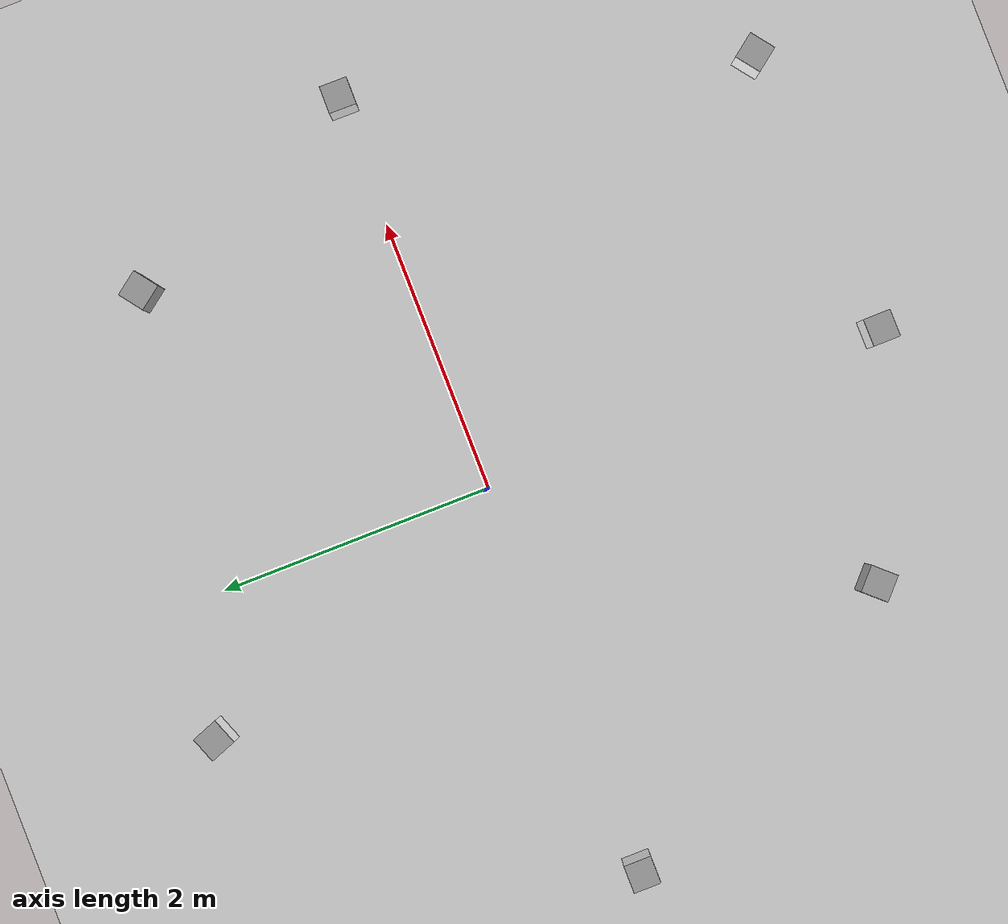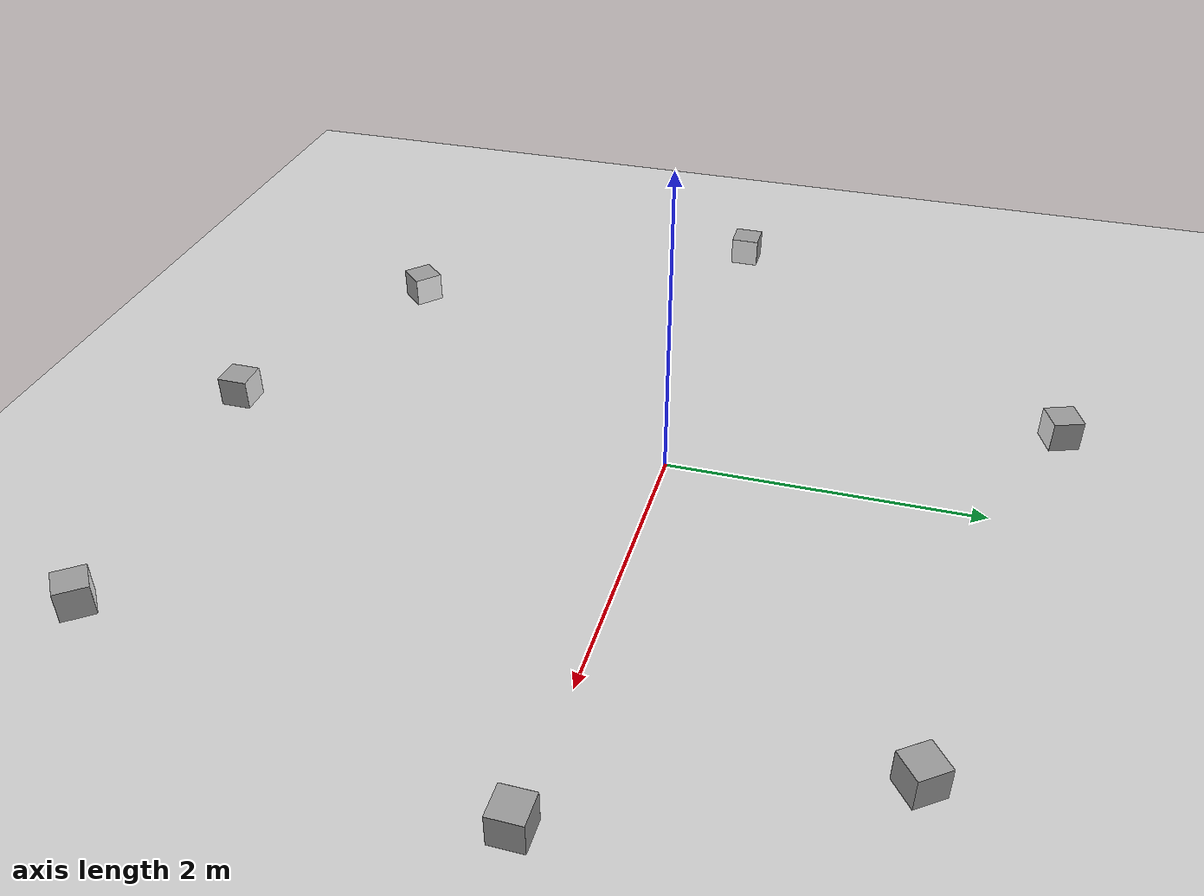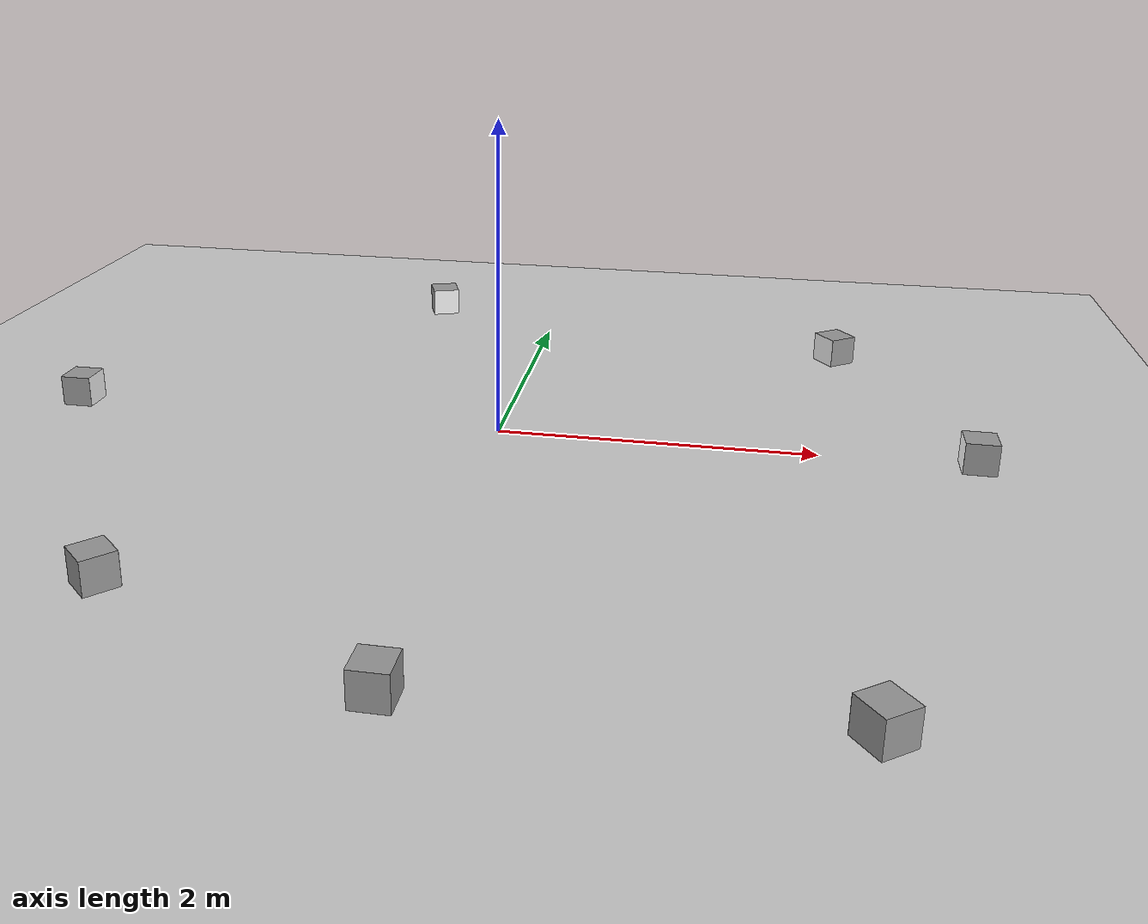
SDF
<sdf version="1.7">
 <world name="default">
  <light name="sun" type="directional">
   <pose>0 0 10 0 -0 0</pose>
   <diffuse>0.8 0.8 0.8 1</diffuse>
   <specular>0.2 0.2 0.2 1</specular>
   <attenuation>
    <range>1000</range>
    <constant>0.9</constant>
    <linear>0.01</linear>
    <quadratic>0.001</quadratic>
   </attenuation>
   <direction>-0.5 0.1 -0.9</direction>
   <spot><inner_angle>0</inner_angle><outer_angle>0</outer_angle><falloff>0</falloff></spot>
  </light>
  <model name="ground_plane">
   <static>1</static>
   <link name="link">
    <collision name="collision">
     <geometry><plane><normal>0 0 1</normal><size>100 100</size></plane></geometry>
     <surface>
      <contact><collide_bitmask>65535</collide_bitmask></contact>
      <friction><ode><mu>100</mu><mu2>50</mu2></ode></friction>
     </surface>
    </collision>
    <visual name="visual">
     <cast_shadows>0</cast_shadows>
     <geometry><plane><normal>0 0 1</normal><size>100 100</size></plane></geometry>
     <material>
      <script><uri>file://media/materials/scripts/gazebo.material</uri><name>Gazebo/Grey</name></script>
     </material>
    </visual>
   </link>
  </model>
  <gravity>0 0 -9.8</gravity>
  <magnetic_field>6e-06 2.3e-05 -4.2e-05</magnetic_field>
  <atmosphere type="adiabatic"/>
  <physics type="ode">
   <max_step_size>0.001</max_step_size>
   <real_time_factor>1</real_time_factor>
   <real_time_update_rate>1000</real_time_update_rate>
  </physics>
  <scene><ambient>0.4 0.4 0.4 1</ambient><background>0.7 0.7 0.7 1</background><shadows>1</shadows></scene>
  <spherical_coordinates>
   <surface_model>EARTH_WGS84</surface_model>
   <latitude_deg>0</latitude_deg>
   <longitude_deg>0</longitude_deg>
   <elevation>0</elevation>
   <heading_deg>0</heading_deg>
  </spherical_coordinates>
  <model name="marker13_box">
   <link name="marker">
    <inertial>
     <mass>0.1</mass>
     <inertia><ixx>0</ixx><ixy>0</ixy><ixz>0</ixz><iyy>0</iyy><iyz>0</iyz><izz>0</izz></inertia>
    </inertial>
    <self_collide>1</self_collide>
    <pose>-0.76428 -0.101106 0.120004 -0.015494 1.56996 -0.015507</pose>
    <visual name="visual">
     <geometry><box><size>0.2 0.2 0.001</size></box></geometry>
     <material>
      <script>
       <uri>model://marker13/material/scripts</uri>
       <uri>model://marker13/material/textures</uri>
       <name>Aruco/marker13</name>
      </script>
      <shader type="pixel"><normal_map>__default__</normal_map></shader>
      <emissive>0 0 0 1</emissive>
      <ambient>1 1 1 1</ambient>
      <diffuse>1 1 1 1</diffuse>
      <specular>0 0 0 1</specular>
     </material>
    </visual>
    <collision name="collision">
     <geometry><box><size>0.2 0.2 0.02</size></box></geometry>
     <surface>
      <friction>
       <ode><mu>1</mu><mu2>1</mu2><fdir1>0 0 0</fdir1><slip1>0</slip1><slip2>0</slip2></ode>
       <torsional>
        <coefficient>1</coefficient>
        <patch_radius>0</patch_radius>
        <surface_radius>0</surface_radius>
        <use_patch_radius>1</use_patch_radius>
        <ode><slip>0</slip></ode>
       </torsional>
      </friction>
      <bounce><restitution_coefficient>0</restitution_coefficient><threshold>1e+06</threshold></bounce>
      <contact>
       <collide_without_contact>0</collide_without_contact>
       <collide_without_contact_bitmask>1</collide_without_contact_bitmask>
       <collide_bitmask>1</collide_bitmask>
       <ode>
        <soft_cfm>0</soft_cfm>
        <soft_erp>0.2</soft_erp>
        <kp>1e+13</kp>
        <kd>1</kd>
        <max_vel>0.01</max_vel>
        <min_depth>0</min_depth>
       </ode>
       <bullet>
        <split_impulse>1</split_impulse>
        <split_impulse_penetration_threshold>-0.01</split_impulse_penetration_threshold>
        <soft_cfm>0</soft_cfm>
        <soft_erp>0.2</soft_erp>
        <kp>1e+13</kp>
        <kd>1</kd>
       </bullet>
      </contact>
     </surface>
    </collision>
   </link>
   <link name="link_1">
    <inertial>
     <mass>1</mass>
     <inertia>
      <ixx>0.166667</ixx>
      <ixy>0</ixy>
      <ixz>0</ixz>
      <iyy>0.166667</iyy>
      <iyz>0</iyz>
      <izz>0.166667</izz>
     </inertia>
    </inertial>
    <pose>-0.86428 -0.101106 0.12 -1.3e-05 -4.2e-05 0</pose>
    <visual name="visual">
     <geometry><box><size>0.2 0.2 0.2</size></box></geometry>
     <material>
      <lighting>1</lighting>
      <script><uri>file://media/materials/scripts/gazebo.material</uri><name>Gazebo/Grey</name></script>
      <shader type="pixel"><normal_map>__default__</normal_map></shader>
      <emissive>0 0 0 1</emissive>
      <ambient>0.3 0.3 0.3 1</ambient>
      <diffuse>0.7 0.7 0.7 1</diffuse>
      <specular>0.01 0.01 0.01 1</specular>
     </material>
    </visual>
    <collision name="collision">
     <geometry><box><size>0.2 0.2 0.2</size></box></geometry>
     <surface>
      <friction>
       <ode><mu>1</mu><mu2>1</mu2><fdir1>0 0 0</fdir1><slip1>0</slip1><slip2>0</slip2></ode>
       <torsional>
        <coefficient>1</coefficient>
        <patch_radius>0</patch_radius>
        <surface_radius>0</surface_radius>
        <use_patch_radius>1</use_patch_radius>
        <ode><slip>0</slip></ode>
       </torsional>
      </friction>
      <bounce><restitution_coefficient>0</restitution_coefficient><threshold>1e+06</threshold></bounce>
      <contact>
       <collide_without_contact>0</collide_without_contact>
       <collide_without_contact_bitmask>1</collide_without_contact_bitmask>
       <collide_bitmask>1</collide_bitmask>
       <ode>
        <soft_cfm>0</soft_cfm>
        <soft_erp>0.2</soft_erp>
        <kp>1e+13</kp>
        <kd>1</kd>
        <max_vel>0.01</max_vel>
        <min_depth>0</min_depth>
       </ode>
       <bullet>
        <split_impulse>1</split_impulse>
        <split_impulse_penetration_threshold>-0.01</split_impulse_penetration_threshold>
        <soft_cfm>0</soft_cfm>
        <soft_erp>0.2</soft_erp>
        <kp>1e+13</kp>
        <kd>1</kd>
       </bullet>
      </contact>
     </surface>
    </collision>
   </link>
   <joint name="link_1_JOINT_3" type="fixed">
    <parent>link_1</parent>
    <child>marker</child>
    <physics>
     <ode><limit><cfm>0</cfm><erp>0.2</erp></limit><suspension><cfm>0</cfm><erp>0.2</erp></suspension></ode>
    </physics>
   </joint>
   <static>0</static>
   <pose>-0.540323 1.63284 -0.020009 1.1e-05 1.8e-05 -1.20809</pose>
  </model>
  <model name="marker15_box">
   <link name="marker">
    <inertial>
     <mass>0.1</mass>
     <inertia><ixx>0</ixx><ixy>0</ixy><ixz>0</ixz><iyy>0</iyy><iyz>0</iyz><izz>0</izz></inertia>
    </inertial>
    <self_collide>1</self_collide>
    <pose>-0.76428 -0.101106 0.120004 -0.015494 1.56996 -0.015507</pose>
    <visual name="visual">
     <geometry><box><size>0.2 0.2 0.001</size></box></geometry>
     <material>
      <script>
       <uri>model://marker15/material/scripts</uri>
       <uri>model://marker15/material/textures</uri>
       <name>Aruco/marker15</name>
      </script>
      <shader type="pixel"><normal_map>__default__</normal_map></shader>
      <emissive>0 0 0 1</emissive>
      <ambient>1 1 1 1</ambient>
      <diffuse>1 1 1 1</diffuse>
      <specular>0 0 0 1</specular>
     </material>
    </visual>
    <collision name="collision">
     <geometry><box><size>0.2 0.2 0.02</size></box></geometry>
     <surface>
      <friction>
       <ode><mu>1</mu><mu2>1</mu2><fdir1>0 0 0</fdir1><slip1>0</slip1><slip2>0</slip2></ode>
       <torsional>
        <coefficient>1</coefficient>
        <patch_radius>0</patch_radius>
        <surface_radius>0</surface_radius>
        <use_patch_radius>1</use_patch_radius>
        <ode><slip>0</slip></ode>
       </torsional>
      </friction>
      <bounce><restitution_coefficient>0</restitution_coefficient><threshold>1e+06</threshold></bounce>
      <contact>
       <collide_without_contact>0</collide_without_contact>
       <collide_without_contact_bitmask>1</collide_without_contact_bitmask>
       <collide_bitmask>1</collide_bitmask>
       <ode>
        <soft_cfm>0</soft_cfm>
        <soft_erp>0.2</soft_erp>
        <kp>1e+13</kp>
        <kd>1</kd>
        <max_vel>0.01</max_vel>
        <min_depth>0</min_depth>
       </ode>
       <bullet>
        <split_impulse>1</split_impulse>
        <split_impulse_penetration_threshold>-0.01</split_impulse_penetration_threshold>
        <soft_cfm>0</soft_cfm>
        <soft_erp>0.2</soft_erp>
        <kp>1e+13</kp>
        <kd>1</kd>
       </bullet>
      </contact>
     </surface>
    </collision>
   </link>
   <link name="link_1">
    <inertial>
     <mass>1</mass>
     <inertia>
      <ixx>0.166667</ixx>
      <ixy>0</ixy>
      <ixz>0</ixz>
      <iyy>0.166667</iyy>
      <iyz>0</iyz>
      <izz>0.166667</izz>
     </inertia>
    </inertial>
    <pose>-0.86428 -0.101106 0.12 -1.3e-05 -4.2e-05 0</pose>
    <visual name="visual">
     <geometry><box><size>0.2 0.2 0.2</size></box></geometry>
     <material>
      <lighting>1</lighting>
      <script><uri>file://media/materials/scripts/gazebo.material</uri><name>Gazebo/Grey</name></script>
      <shader type="pixel"><normal_map>__default__</normal_map></shader>
      <emissive>0 0 0 1</emissive>
      <ambient>0.3 0.3 0.3 1</ambient>
      <diffuse>0.7 0.7 0.7 1</diffuse>
      <specular>0.01 0.01 0.01 1</specular>
     </material>
    </visual>
    <collision name="collision">
     <geometry><box><size>0.2 0.2 0.2</size></box></geometry>
     <surface>
      <friction>
       <ode><mu>1</mu><mu2>1</mu2><fdir1>0 0 0</fdir1><slip1>0</slip1><slip2>0</slip2></ode>
       <torsional>
        <coefficient>1</coefficient>
        <patch_radius>0</patch_radius>
        <surface_radius>0</surface_radius>
        <use_patch_radius>1</use_patch_radius>
        <ode><slip>0</slip></ode>
       </torsional>
      </friction>
      <bounce><restitution_coefficient>0</restitution_coefficient><threshold>1e+06</threshold></bounce>
      <contact>
       <collide_without_contact>0</collide_without_contact>
       <collide_without_contact_bitmask>1</collide_without_contact_bitmask>
       <collide_bitmask>1</collide_bitmask>
       <ode>
        <soft_cfm>0</soft_cfm>
        <soft_erp>0.2</soft_erp>
        <kp>1e+13</kp>
        <kd>1</kd>
        <max_vel>0.01</max_vel>
        <min_depth>0</min_depth>
       </ode>
       <bullet>
        <split_impulse>1</split_impulse>
        <split_impulse_penetration_threshold>-0.01</split_impulse_penetration_threshold>
        <soft_cfm>0</soft_cfm>
        <soft_erp>0.2</soft_erp>
        <kp>1e+13</kp>
        <kd>1</kd>
       </bullet>
      </contact>
     </surface>
    </collision>
   </link>
   <joint name="link_1_JOINT_3" type="fixed">
    <parent>link_1</parent>
    <child>marker</child>
    <physics>
     <ode><limit><cfm>0</cfm><erp>0.2</erp></limit><suspension><cfm>0</cfm><erp>0.2</erp></suspension></ode>
    </physics>
   </joint>
   <static>0</static>
   <pose>-2.01216 0.073184 -0.020009 1.4e-05 1.8e-05 0.001711</pose>
  </model>
  <model name="marker17_box">
   <link name="marker">
    <inertial>
     <mass>0.1</mass>
     <inertia><ixx>0</ixx><ixy>0</ixy><ixz>0</ixz><iyy>0</iyy><iyz>0</iyz><izz>0</izz></inertia>
    </inertial>
    <self_collide>1</self_collide>
    <pose>-0.76428 -0.101106 0.120004 -0.015494 1.56996 -0.015507</pose>
    <visual name="visual">
     <geometry><box><size>0.2 0.2 0.001</size></box></geometry>
     <material>
      <script>
       <uri>model://marker17/material/scripts</uri>
       <uri>model://marker17/material/textures</uri>
       <name>Aruco/marker17</name>
      </script>
      <shader type="pixel"><normal_map>__default__</normal_map></shader>
      <emissive>0 0 0 1</emissive>
      <ambient>1 1 1 1</ambient>
      <diffuse>1 1 1 1</diffuse>
      <specular>0 0 0 1</specular>
     </material>
    </visual>
    <collision name="collision">
     <geometry><box><size>0.2 0.2 0.02</size></box></geometry>
     <surface>
      <friction>
       <ode><mu>1</mu><mu2>1</mu2><fdir1>0 0 0</fdir1><slip1>0</slip1><slip2>0</slip2></ode>
       <torsional>
        <coefficient>1</coefficient>
        <patch_radius>0</patch_radius>
        <surface_radius>0</surface_radius>
        <use_patch_radius>1</use_patch_radius>
        <ode><slip>0</slip></ode>
       </torsional>
      </friction>
      <bounce><restitution_coefficient>0</restitution_coefficient><threshold>1e+06</threshold></bounce>
      <contact>
       <collide_without_contact>0</collide_without_contact>
       <collide_without_contact_bitmask>1</collide_without_contact_bitmask>
       <collide_bitmask>1</collide_bitmask>
       <ode>
        <soft_cfm>0</soft_cfm>
        <soft_erp>0.2</soft_erp>
        <kp>1e+13</kp>
        <kd>1</kd>
        <max_vel>0.01</max_vel>
        <min_depth>0</min_depth>
       </ode>
       <bullet>
        <split_impulse>1</split_impulse>
        <split_impulse_penetration_threshold>-0.01</split_impulse_penetration_threshold>
        <soft_cfm>0</soft_cfm>
        <soft_erp>0.2</soft_erp>
        <kp>1e+13</kp>
        <kd>1</kd>
       </bullet>
      </contact>
     </surface>
    </collision>
   </link>
   <link name="link_1">
    <inertial>
     <mass>1</mass>
     <inertia>
      <ixx>0.166667</ixx>
      <ixy>0</ixy>
      <ixz>0</ixz>
      <iyy>0.166667</iyy>
      <iyz>0</iyz>
      <izz>0.166667</izz>
     </inertia>
    </inertial>
    <pose>-0.86428 -0.101106 0.12 -1.3e-05 -4.2e-05 0</pose>
    <visual name="visual">
     <geometry><box><size>0.2 0.2 0.2</size></box></geometry>
     <material>
      <lighting>1</lighting>
      <script><uri>file://media/materials/scripts/gazebo.material</uri><name>Gazebo/Grey</name></script>
      <shader type="pixel"><normal_map>__default__</normal_map></shader>
      <emissive>0 0 0 1</emissive>
      <ambient>0.3 0.3 0.3 1</ambient>
      <diffuse>0.7 0.7 0.7 1</diffuse>
      <specular>0.01 0.01 0.01 1</specular>
     </material>
    </visual>
    <collision name="collision">
     <geometry><box><size>0.2 0.2 0.2</size></box></geometry>
     <surface>
      <friction>
       <ode><mu>1</mu><mu2>1</mu2><fdir1>0 0 0</fdir1><slip1>0</slip1><slip2>0</slip2></ode>
       <torsional>
        <coefficient>1</coefficient>
        <patch_radius>0</patch_radius>
        <surface_radius>0</surface_radius>
        <use_patch_radius>1</use_patch_radius>
        <ode><slip>0</slip></ode>
       </torsional>
      </friction>
      <bounce><restitution_coefficient>0</restitution_coefficient><threshold>1e+06</threshold></bounce>
      <contact>
       <collide_without_contact>0</collide_without_contact>
       <collide_without_contact_bitmask>1</collide_without_contact_bitmask>
       <collide_bitmask>1</collide_bitmask>
       <ode>
        <soft_cfm>0</soft_cfm>
        <soft_erp>0.2</soft_erp>
        <kp>1e+13</kp>
        <kd>1</kd>
        <max_vel>0.01</max_vel>
        <min_depth>0</min_depth>
       </ode>
       <bullet>
        <split_impulse>1</split_impulse>
        <split_impulse_penetration_threshold>-0.01</split_impulse_penetration_threshold>
        <soft_cfm>0</soft_cfm>
        <soft_erp>0.2</soft_erp>
        <kp>1e+13</kp>
        <kd>1</kd>
       </bullet>
      </contact>
     </surface>
    </collision>
   </link>
   <joint name="link_1_JOINT_3" type="fixed">
    <parent>link_1</parent>
    <child>marker</child>
    <physics>
     <ode><limit><cfm>0</cfm><erp>0.2</erp></limit><suspension><cfm>0</cfm><erp>0.2</erp></suspension></ode>
    </physics>
   </joint>
   <static>0</static>
   <pose>-1.08677 -1.58814 -0.020007 1e-05 1.7e-05 0.830971</pose>
  </model>
  <model name="marker19_box">
   <link name="marker">
    <inertial>
     <mass>0.1</mass>
     <inertia><ixx>0</ixx><ixy>0</ixy><ixz>0</ixz><iyy>0</iyy><iyz>0</iyz><izz>0</izz></inertia>
    </inertial>
    <self_collide>1</self_collide>
    <pose>-0.76428 -0.101106 0.120004 -0.015494 1.56996 -0.015507</pose>
    <visual name="visual">
     <geometry><box><size>0.2 0.2 0.001</size></box></geometry>
     <material>
      <script>
       <uri>model://marker19/material/scripts</uri>
       <uri>model://marker19/material/textures</uri>
       <name>Aruco/marker19</name>
      </script>
      <shader type="pixel"><normal_map>__default__</normal_map></shader>
      <emissive>0 0 0 1</emissive>
      <ambient>1 1 1 1</ambient>
      <diffuse>1 1 1 1</diffuse>
      <specular>0 0 0 1</specular>
     </material>
    </visual>
    <collision name="collision">
     <geometry><box><size>0.2 0.2 0.02</size></box></geometry>
     <surface>
      <friction>
       <ode><mu>1</mu><mu2>1</mu2><fdir1>0 0 0</fdir1><slip1>0</slip1><slip2>0</slip2></ode>
       <torsional>
        <coefficient>1</coefficient>
        <patch_radius>0</patch_radius>
        <surface_radius>0</surface_radius>
        <use_patch_radius>1</use_patch_radius>
        <ode><slip>0</slip></ode>
       </torsional>
      </friction>
      <bounce><restitution_coefficient>0</restitution_coefficient><threshold>1e+06</threshold></bounce>
      <contact>
       <collide_without_contact>0</collide_without_contact>
       <collide_without_contact_bitmask>1</collide_without_contact_bitmask>
       <collide_bitmask>1</collide_bitmask>
       <ode>
        <soft_cfm>0</soft_cfm>
        <soft_erp>0.2</soft_erp>
        <kp>1e+13</kp>
        <kd>1</kd>
        <max_vel>0.01</max_vel>
        <min_depth>0</min_depth>
       </ode>
       <bullet>
        <split_impulse>1</split_impulse>
        <split_impulse_penetration_threshold>-0.01</split_impulse_penetration_threshold>
        <soft_cfm>0</soft_cfm>
        <soft_erp>0.2</soft_erp>
        <kp>1e+13</kp>
        <kd>1</kd>
       </bullet>
      </contact>
     </surface>
    </collision>
   </link>
   <link name="link_1">
    <inertial>
     <mass>1</mass>
     <inertia>
      <ixx>0.166667</ixx>
      <ixy>0</ixy>
      <ixz>0</ixz>
      <iyy>0.166667</iyy>
      <iyz>0</iyz>
      <izz>0.166667</izz>
     </inertia>
    </inertial>
    <pose>-0.86428 -0.101106 0.12 -1.3e-05 -4.2e-05 0</pose>
    <visual name="visual">
     <geometry><box><size>0.2 0.2 0.2</size></box></geometry>
     <material>
      <lighting>1</lighting>
      <script><uri>file://media/materials/scripts/gazebo.material</uri><name>Gazebo/Grey</name></script>
      <shader type="pixel"><normal_map>__default__</normal_map></shader>
      <emissive>0 0 0 1</emissive>
      <ambient>0.3 0.3 0.3 1</ambient>
      <diffuse>0.7 0.7 0.7 1</diffuse>
      <specular>0.01 0.01 0.01 1</specular>
     </material>
    </visual>
    <collision name="collision">
     <geometry><box><size>0.2 0.2 0.2</size></box></geometry>
     <surface>
      <friction>
       <ode><mu>1</mu><mu2>1</mu2><fdir1>0 0 0</fdir1><slip1>0</slip1><slip2>0</slip2></ode>
       <torsional>
        <coefficient>1</coefficient>
        <patch_radius>0</patch_radius>
        <surface_radius>0</surface_radius>
        <use_patch_radius>1</use_patch_radius>
        <ode><slip>0</slip></ode>
       </torsional>
      </friction>
      <bounce><restitution_coefficient>0</restitution_coefficient><threshold>1e+06</threshold></bounce>
      <contact>
       <collide_without_contact>0</collide_without_contact>
       <collide_without_contact_bitmask>1</collide_without_contact_bitmask>
       <collide_bitmask>1</collide_bitmask>
       <ode>
        <soft_cfm>0</soft_cfm>
        <soft_erp>0.2</soft_erp>
        <kp>1e+13</kp>
        <kd>1</kd>
        <max_vel>0.01</max_vel>
        <min_depth>0</min_depth>
       </ode>
       <bullet>
        <split_impulse>1</split_impulse>
        <split_impulse_penetration_threshold>-0.01</split_impulse_penetration_threshold>
        <soft_cfm>0</soft_cfm>
        <soft_erp>0.2</soft_erp>
        <kp>1e+13</kp>
        <kd>1</kd>
       </bullet>
      </contact>
     </surface>
    </collision>
   </link>
   <joint name="link_1_JOINT_3" type="fixed">
    <parent>link_1</parent>
    <child>marker</child>
    <physics>
     <ode><limit><cfm>0</cfm><erp>0.2</erp></limit><suspension><cfm>0</cfm><erp>0.2</erp></suspension></ode>
    </physics>
   </joint>
   <static>0</static>
   <pose>-0.052831 -2.08973 -0.020007 1.5e-05 1.8e-05 1.57727</pose>
  </model>
  <model name="marker23_box">
   <link name="marker">
    <inertial>
     <mass>0.1</mass>
     <inertia><ixx>0</ixx><ixy>0</ixy><ixz>0</ixz><iyy>0</iyy><iyz>0</iyz><izz>0</izz></inertia>
    </inertial>
    <self_collide>1</self_collide>
    <pose>-0.76428 -0.101106 0.120004 -0.015494 1.56996 -0.015507</pose>
    <visual name="visual">
     <geometry><box><size>0.2 0.2 0.001</size></box></geometry>
     <material>
      <script>
       <uri>model://marker23/material/scripts</uri>
       <uri>model://marker23/material/textures</uri>
       <name>Aruco/marker23</name>
      </script>
      <shader type="pixel"><normal_map>__default__</normal_map></shader>
      <emissive>0 0 0 1</emissive>
      <ambient>1 1 1 1</ambient>
      <diffuse>1 1 1 1</diffuse>
      <specular>0 0 0 1</specular>
     </material>
    </visual>
    <collision name="collision">
     <geometry><box><size>0.2 0.2 0.02</size></box></geometry>
     <surface>
      <friction>
       <ode><mu>1</mu><mu2>1</mu2><fdir1>0 0 0</fdir1><slip1>0</slip1><slip2>0</slip2></ode>
       <torsional>
        <coefficient>1</coefficient>
        <patch_radius>0</patch_radius>
        <surface_radius>0</surface_radius>
        <use_patch_radius>1</use_patch_radius>
        <ode><slip>0</slip></ode>
       </torsional>
      </friction>
      <bounce><restitution_coefficient>0</restitution_coefficient><threshold>1e+06</threshold></bounce>
      <contact>
       <collide_without_contact>0</collide_without_contact>
       <collide_without_contact_bitmask>1</collide_without_contact_bitmask>
       <collide_bitmask>1</collide_bitmask>
       <ode>
        <soft_cfm>0</soft_cfm>
        <soft_erp>0.2</soft_erp>
        <kp>1e+13</kp>
        <kd>1</kd>
        <max_vel>0.01</max_vel>
        <min_depth>0</min_depth>
       </ode>
       <bullet>
        <split_impulse>1</split_impulse>
        <split_impulse_penetration_threshold>-0.01</split_impulse_penetration_threshold>
        <soft_cfm>0</soft_cfm>
        <soft_erp>0.2</soft_erp>
        <kp>1e+13</kp>
        <kd>1</kd>
       </bullet>
      </contact>
     </surface>
    </collision>
   </link>
   <link name="link_1">
    <inertial>
     <mass>1</mass>
     <inertia>
      <ixx>0.166667</ixx>
      <ixy>0</ixy>
      <ixz>0</ixz>
      <iyy>0.166667</iyy>
      <iyz>0</iyz>
      <izz>0.166667</izz>
     </inertia>
    </inertial>
    <pose>-0.86428 -0.101106 0.12 -1.3e-05 -4.2e-05 0</pose>
    <visual name="visual">
     <geometry><box><size>0.2 0.2 0.2</size></box></geometry>
     <material>
      <lighting>1</lighting>
      <script><uri>file://media/materials/scripts/gazebo.material</uri><name>Gazebo/Grey</name></script>
      <shader type="pixel"><normal_map>__default__</normal_map></shader>
      <emissive>0 0 0 1</emissive>
      <ambient>0.3 0.3 0.3 1</ambient>
      <diffuse>0.7 0.7 0.7 1</diffuse>
      <specular>0.01 0.01 0.01 1</specular>
     </material>
    </visual>
    <collision name="collision">
     <geometry><box><size>0.2 0.2 0.2</size></box></geometry>
     <surface>
      <friction>
       <ode><mu>1</mu><mu2>1</mu2><fdir1>0 0 0</fdir1><slip1>0</slip1><slip2>0</slip2></ode>
       <torsional>
        <coefficient>1</coefficient>
        <patch_radius>0</patch_radius>
        <surface_radius>0</surface_radius>
        <use_patch_radius>1</use_patch_radius>
        <ode><slip>0</slip></ode>
       </torsional>
      </friction>
      <bounce><restitution_coefficient>0</restitution_coefficient><threshold>1e+06</threshold></bounce>
      <contact>
       <collide_without_contact>0</collide_without_contact>
       <collide_without_contact_bitmask>1</collide_without_contact_bitmask>
       <collide_bitmask>1</collide_bitmask>
       <ode>
        <soft_cfm>0</soft_cfm>
        <soft_erp>0.2</soft_erp>
        <kp>1e+13</kp>
        <kd>1</kd>
        <max_vel>0.01</max_vel>
        <min_depth>0</min_depth>
       </ode>
       <bullet>
        <split_impulse>1</split_impulse>
        <split_impulse_penetration_threshold>-0.01</split_impulse_penetration_threshold>
        <soft_cfm>0</soft_cfm>
        <soft_erp>0.2</soft_erp>
        <kp>1e+13</kp>
        <kd>1</kd>
       </bullet>
      </contact>
     </surface>
    </collision>
   </link>
   <joint name="link_1_JOINT_3" type="fixed">
    <parent>link_1</parent>
    <child>marker</child>
    <physics>
     <ode><limit><cfm>0</cfm><erp>0.2</erp></limit><suspension><cfm>0</cfm><erp>0.2</erp></suspension></ode>
    </physics>
   </joint>
   <static>0</static>
   <pose>2.06622 -0.104874 -0.020006 2.1e-05 1.8e-05 3.13333</pose>
  </model>
  <model name="marker25_box">
   <link name="marker">
    <inertial>
     <mass>0.1</mass>
     <inertia><ixx>0</ixx><ixy>0</ixy><ixz>0</ixz><iyy>0</iyy><iyz>0</iyz><izz>0</izz></inertia>
    </inertial>
    <self_collide>1</self_collide>
    <pose>-0.76428 -0.101106 0.120004 -0.015494 1.56996 -0.015507</pose>
    <visual name="visual">
     <geometry><box><size>0.2 0.2 0.001</size></box></geometry>
     <material>
      <script>
       <uri>model://marker25/material/scripts</uri>
       <uri>model://marker25/material/textures</uri>
       <name>Aruco/marker25</name>
      </script>
      <shader type="pixel"><normal_map>__default__</normal_map></shader>
      <emissive>0 0 0 1</emissive>
      <ambient>1 1 1 1</ambient>
      <diffuse>1 1 1 1</diffuse>
      <specular>0 0 0 1</specular>
     </material>
    </visual>
    <collision name="collision">
     <geometry><box><size>0.2 0.2 0.02</size></box></geometry>
     <surface>
      <friction>
       <ode><mu>1</mu><mu2>1</mu2><fdir1>0 0 0</fdir1><slip1>0</slip1><slip2>0</slip2></ode>
       <torsional>
        <coefficient>1</coefficient>
        <patch_radius>0</patch_radius>
        <surface_radius>0</surface_radius>
        <use_patch_radius>1</use_patch_radius>
        <ode><slip>0</slip></ode>
       </torsional>
      </friction>
      <bounce><restitution_coefficient>0</restitution_coefficient><threshold>1e+06</threshold></bounce>
      <contact>
       <collide_without_contact>0</collide_without_contact>
       <collide_without_contact_bitmask>1</collide_without_contact_bitmask>
       <collide_bitmask>1</collide_bitmask>
       <ode>
        <soft_cfm>0</soft_cfm>
        <soft_erp>0.2</soft_erp>
        <kp>1e+13</kp>
        <kd>1</kd>
        <max_vel>0.01</max_vel>
        <min_depth>0</min_depth>
       </ode>
       <bullet>
        <split_impulse>1</split_impulse>
        <split_impulse_penetration_threshold>-0.01</split_impulse_penetration_threshold>
        <soft_cfm>0</soft_cfm>
        <soft_erp>0.2</soft_erp>
        <kp>1e+13</kp>
        <kd>1</kd>
       </bullet>
      </contact>
     </surface>
    </collision>
   </link>
   <link name="link_1">
    <inertial>
     <mass>1</mass>
     <inertia>
      <ixx>0.166667</ixx>
      <ixy>0</ixy>
      <ixz>0</ixz>
      <iyy>0.166667</iyy>
      <iyz>0</iyz>
      <izz>0.166667</izz>
     </inertia>
    </inertial>
    <pose>-0.86428 -0.101106 0.12 -1.3e-05 -4.2e-05 0</pose>
    <visual name="visual">
     <geometry><box><size>0.2 0.2 0.2</size></box></geometry>
     <material>
      <lighting>1</lighting>
      <script><uri>file://media/materials/scripts/gazebo.material</uri><name>Gazebo/Grey</name></script>
      <shader type="pixel"><normal_map>__default__</normal_map></shader>
      <emissive>0 0 0 1</emissive>
      <ambient>0.3 0.3 0.3 1</ambient>
      <diffuse>0.7 0.7 0.7 1</diffuse>
      <specular>0.01 0.01 0.01 1</specular>
     </material>
    </visual>
    <collision name="collision">
     <geometry><box><size>0.2 0.2 0.2</size></box></geometry>
     <surface>
      <friction>
       <ode><mu>1</mu><mu2>1</mu2><fdir1>0 0 0</fdir1><slip1>0</slip1><slip2>0</slip2></ode>
       <torsional>
        <coefficient>1</coefficient>
        <patch_radius>0</patch_radius>
        <surface_radius>0</surface_radius>
        <use_patch_radius>1</use_patch_radius>
        <ode><slip>0</slip></ode>
       </torsional>
      </friction>
      <bounce><restitution_coefficient>0</restitution_coefficient><threshold>1e+06</threshold></bounce>
      <contact>
       <collide_without_contact>0</collide_without_contact>
       <collide_without_contact_bitmask>1</collide_without_contact_bitmask>
       <collide_bitmask>1</collide_bitmask>
       <ode>
        <soft_cfm>0</soft_cfm>
        <soft_erp>0.2</soft_erp>
        <kp>1e+13</kp>
        <kd>1</kd>
        <max_vel>0.01</max_vel>
        <min_depth>0</min_depth>
       </ode>
       <bullet>
        <split_impulse>1</split_impulse>
        <split_impulse_penetration_threshold>-0.01</split_impulse_penetration_threshold>
        <soft_cfm>0</soft_cfm>
        <soft_erp>0.2</soft_erp>
        <kp>1e+13</kp>
        <kd>1</kd>
       </bullet>
      </contact>
     </surface>
    </collision>
   </link>
   <joint name="link_1_JOINT_3" type="fixed">
    <parent>link_1</parent>
    <child>marker</child>
    <physics>
     <ode><limit><cfm>0</cfm><erp>0.2</erp></limit><suspension><cfm>0</cfm><erp>0.2</erp></suspension></ode>
    </physics>
   </joint>
   <static>0</static>
   <pose>1.53277 1.17347 -0.020007 1.7e-05 1.7e-05 -2.50139</pose>
  </model>
  <model name="marker12_box">
   <link name="marker">
    <inertial>
     <mass>0.1</mass>
     <inertia><ixx>0</ixx><ixy>0</ixy><ixz>0</ixz><iyy>0</iyy><iyz>0</iyz><izz>0</izz></inertia>
    </inertial>
    <self_collide>1</self_collide>
    <pose>-0.76428 -0.101106 0.120004 -0.015494 1.56996 -0.015507</pose>
    <visual name="visual">
     <geometry><box><size>0.2 0.2 0.001</size></box></geometry>
     <material>
      <script>
       <uri>model://marker12/material/scripts</uri>
       <uri>model://marker12/material/textures</uri>
       <name>Aruco/marker12</name>
      </script>
      <shader type="pixel"><normal_map>__default__</normal_map></shader>
      <emissive>0 0 0 1</emissive>
      <ambient>1 1 1 1</ambient>
      <diffuse>1 1 1 1</diffuse>
      <specular>0 0 0 1</specular>
     </material>
    </visual>
    <collision name="collision">
     <geometry><box><size>0.2 0.2 0.02</size></box></geometry>
     <surface>
      <friction>
       <ode><mu>1</mu><mu2>1</mu2><fdir1>0 0 0</fdir1><slip1>0</slip1><slip2>0</slip2></ode>
       <torsional>
        <coefficient>1</coefficient>
        <patch_radius>0</patch_radius>
        <surface_radius>0</surface_radius>
        <use_patch_radius>1</use_patch_radius>
        <ode><slip>0</slip></ode>
       </torsional>
      </friction>
      <bounce><restitution_coefficient>0</restitution_coefficient><threshold>1e+06</threshold></bounce>
      <contact>
       <collide_without_contact>0</collide_without_contact>
       <collide_without_contact_bitmask>1</collide_without_contact_bitmask>
       <collide_bitmask>1</collide_bitmask>
       <ode>
        <soft_cfm>0</soft_cfm>
        <soft_erp>0.2</soft_erp>
        <kp>1e+13</kp>
        <kd>1</kd>
        <max_vel>0.01</max_vel>
        <min_depth>0</min_depth>
       </ode>
       <bullet>
        <split_impulse>1</split_impulse>
        <split_impulse_penetration_threshold>-0.01</split_impulse_penetration_threshold>
        <soft_cfm>0</soft_cfm>
        <soft_erp>0.2</soft_erp>
        <kp>1e+13</kp>
        <kd>1</kd>
       </bullet>
      </contact>
     </surface>
    </collision>
   </link>
   <link name="link_1">
    <inertial>
     <mass>1</mass>
     <inertia>
      <ixx>0.166667</ixx>
      <ixy>0</ixy>
      <ixz>0</ixz>
      <iyy>0.166667</iyy>
      <iyz>0</iyz>
      <izz>0.166667</izz>
     </inertia>
    </inertial>
    <pose>-0.86428 -0.101106 0.12 -1.3e-05 -4.2e-05 0</pose>
    <visual name="visual">
     <geometry><box><size>0.2 0.2 0.2</size></box></geometry>
     <material>
      <lighting>1</lighting>
      <script><uri>file://media/materials/scripts/gazebo.material</uri><name>Gazebo/Grey</name></script>
      <shader type="pixel"><normal_map>__default__</normal_map></shader>
      <emissive>0 0 0 1</emissive>
      <ambient>0.3 0.3 0.3 1</ambient>
      <diffuse>0.7 0.7 0.7 1</diffuse>
      <specular>0.01 0.01 0.01 1</specular>
     </material>
    </visual>
    <collision name="collision">
     <geometry><box><size>0.2 0.2 0.2</size></box></geometry>
     <surface>
      <friction>
       <ode><mu>1</mu><mu2>1</mu2><fdir1>0 0 0</fdir1><slip1>0</slip1><slip2>0</slip2></ode>
       <torsional>
        <coefficient>1</coefficient>
        <patch_radius>0</patch_radius>
        <surface_radius>0</surface_radius>
        <use_patch_radius>1</use_patch_radius>
        <ode><slip>0</slip></ode>
       </torsional>
      </friction>
      <bounce><restitution_coefficient>0</restitution_coefficient><threshold>1e+06</threshold></bounce>
      <contact>
       <collide_without_contact>0</collide_without_contact>
       <collide_without_contact_bitmask>1</collide_without_contact_bitmask>
       <collide_bitmask>1</collide_bitmask>
       <ode>
        <soft_cfm>0</soft_cfm>
        <soft_erp>0.2</soft_erp>
        <kp>1e+13</kp>
        <kd>1</kd>
        <max_vel>0.01</max_vel>
        <min_depth>0</min_depth>
       </ode>
       <bullet>
        <split_impulse>1</split_impulse>
        <split_impulse_penetration_threshold>-0.01</split_impulse_penetration_threshold>
        <soft_cfm>0</soft_cfm>
        <soft_erp>0.2</soft_erp>
        <kp>1e+13</kp>
        <kd>1</kd>
       </bullet>
      </contact>
     </surface>
    </collision>
   </link>
   <joint name="link_1_JOINT_3" type="fixed">
    <parent>link_1</parent>
    <child>marker</child>
    <physics>
     <ode><limit><cfm>0</cfm><erp>0.2</erp></limit><suspension><cfm>0</cfm><erp>0.2</erp></suspension></ode>
    </physics>
   </joint>
   <static>0</static>
   <pose>1.55679 -2.20343 -0.020007 1.7e-05 1.8e-05 2.22168</pose>
  </model>
 </world>
</sdf>
